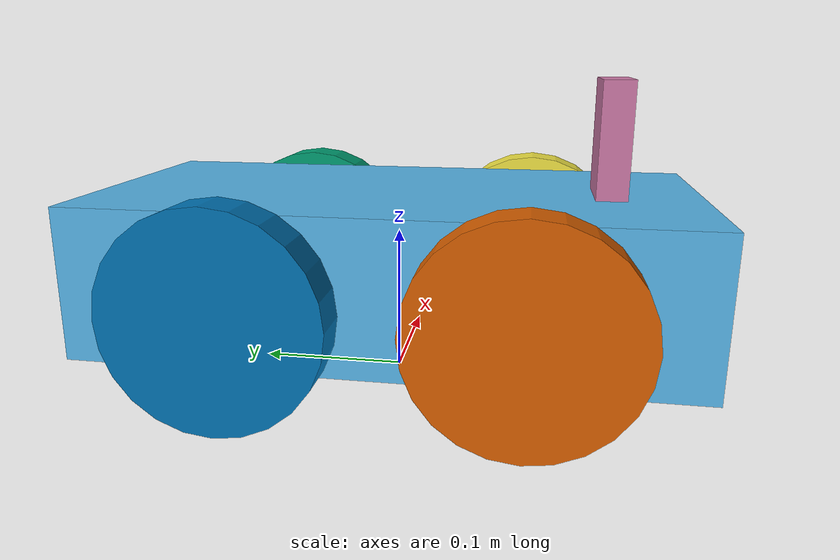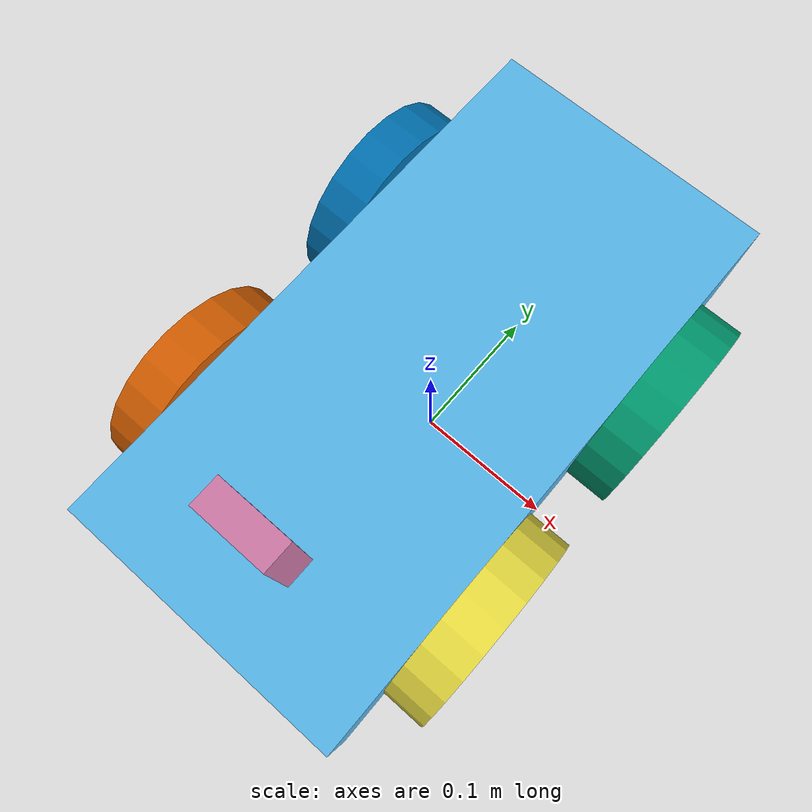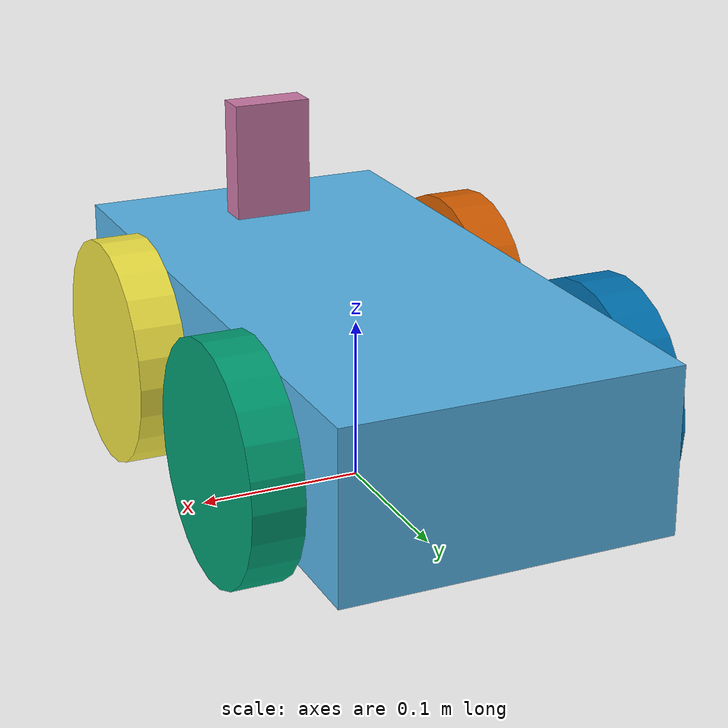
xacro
<?xml version="1.0"?>
<robot xmlns:xacro="http://www.ros.org/wiki/xacro" name="hover">

    <link name="dummy_link" />

    <joint name="dummy_joint" type="fixed">
        <parent link="dummy_link"/>
        <child link="base_link"/>
    </joint>

    <link name="base_link">
        <inertial>
            <origin xyz="0 0 0.08" rpy="0 0 0"/>
            <mass value="0.8"/>
            <inertia ixx="0.306"  ixy="0"  ixz="0" iyy="0.36" iyz="0" izz="0.54" />
        </inertial>

        <visual>
            <origin xyz="0 0 0.08" rpy="0 0 0"/>
            <geometry>
                <box size="0.2 0.4 0.1" />
            </geometry>
        </visual>

        <collision>
            <origin xyz="0 0 0.08" rpy="0 0 0"/>
            <geometry>
                <box size="0.2 0.4 0.1" />
            </geometry>
        </collision>
    </link>

    <gazebo reference="base_link">
        <visual>
            <material>
                <ambient>0.0 0.0 1.0 1.0</ambient>
                <diffuse>0.0 0.0 1.0 1.0</diffuse>
                <specular>0.1 0.1 0.1 1.0</specular>
                <emissive>0.0 0.0 0.0 1.0</emissive>
            </material>
        </visual>
    </gazebo>

    <xacro:macro name="wheel" params="prefix x_reflect y_reflect">

        <link name="${prefix}_wheel">
            <inertial>
                <mass value="0.1"/>
                <inertia ixx="0.000702"  ixy="0"  ixz="0" iyy="0.000702" iyz="0" izz="0.001323" />
            </inertial>

            <visual>
                <geometry>
                    <cylinder radius="0.07" length="0.03"/>
                </geometry>
            </visual>

            <collision>
                <geometry>
                    <cylinder radius="0.07" length="0.03"/>
                </geometry>
            </collision>
        </link>

        <gazebo reference="${prefix}_wheel">
            <visual>
                <material>
                    <ambient>1.0 1.0 1.0 1.0</ambient>
                    <diffuse>1.0 1.0 1.0 1.0</diffuse>
                    <specular>0.1 0.1 0.1 1.0</specular>
                    <emissive>0.0 0.0 0.0 1.0</emissive>
                </material>
            </visual>
            <mu1>0.4</mu1>
            <mu2>0.4</mu2>
            <kp>1000000.0</kp>
            <kd>100.0</kd>
        </gazebo>

        <joint name="joint_base_to_${prefix}_wheel" type="continuous">
            <origin xyz="${x_reflect * 0.115} ${y_reflect * 0.09} 0.07" rpy="1.57079633 1.57079633 1.57079633"/>
            <axis xyz="0 0 1"/>
            <parent link="base_link"/>
            <child link="${prefix}_wheel"/>
        </joint>

    </xacro:macro>

    <xacro:wheel prefix="right_front" x_reflect="1"  y_reflect="1" />
    <xacro:wheel prefix="right_back"  x_reflect="1"  y_reflect="-1" />
    <xacro:wheel prefix="left_front"  x_reflect="-1" y_reflect="1" />
    <xacro:wheel prefix="left_back"   x_reflect="-1" y_reflect="-1" />

    <xacro:property name="wheel_separation" value="0.23" />
    <xacro:property name="wheel_diameter" value="0.14" />

    <xacro:property name="cam_x" value="0.02" />
    <xacro:property name="cam_y" value="0.05" />
    <xacro:property name="cam_z" value="0.08" />

    <gazebo>
        <plugin name="skid_steer_drive_controller" filename="libgazebo_ros_skid_steer_drive.so">
        <updateRate>100.0</updateRate>
        <leftFrontJoint>joint_base_to_left_front_wheel</leftFrontJoint>
        <rightFrontJoint>joint_base_to_right_front_wheel</rightFrontJoint>
        <leftRearJoint>joint_base_to_left_back_wheel</leftRearJoint>
        <rightRearJoint>joint_base_to_right_back_wheel</rightRearJoint>
        <wheelSeparation>${wheel_separation}</wheelSeparation>
        <wheelDiameter>${wheel_diameter}</wheelDiameter>
        <robotBaseFrame>base_link</robotBaseFrame>
        <torque>20</torque>
        <commandTopic>cmd_vel</commandTopic>
        <odometryTopic>odom</odometryTopic>
        <odometryFrame>odom</odometryFrame>
        <covariance_x>0.000100</covariance_x>
        <covariance_y>0.000100</covariance_y>
        <covariance_yaw>0.010000</covariance_yaw>
        <broadcastTF>true</broadcastTF>
        </plugin>
    </gazebo>

    <xacro:macro name="camera_sensor" params="parent *origin">

        <link name="camera_link">
        <inertial>
            <mass value="0.1"/>
            <inertia ixx="0.000296" ixy="0.0" ixz="0.0"
                    iyy="0.000296" iyz="0.0"
                    izz="0.000167" />
        </inertial>

        <visual>
            <geometry>
            <box size="${cam_x} ${cam_y} ${cam_z}"/>
            </geometry>
        </visual>

        <collision>
            <geometry>
            <box size="${cam_x} ${cam_y} ${cam_z}"/>
            </geometry>
        </collision>
        </link>

        <joint name="joint_base_to_camera_link" type="fixed">
        <xacro:insert_block name="origin" />
        <parent link="${parent}"/>
        <child link="camera_link"/>
        </joint>

        <gazebo reference="camera_link">
            <visual>
                <material>
                    <ambient>0.0 1.0 0.0 1.0</ambient>
                    <diffuse>0.0 1.0 0.0 1.0</diffuse>
                    <specular>0.1 0.1 0.1 1.0</specular>
                    <emissive>0.0 0.0 0.0 1.0</emissive>
                </material>
            </visual>
        </gazebo>

        <gazebo reference="camera_link">
        <sensor type="depth" name="camera">
            <always_on>true</always_on>
            <visualize>true</visualize>
            <camera>
            <horizontal_fov>0.733038</horizontal_fov>
            <image>
                <width>640</width>
                <height>480</height>
                <format>R8G8B8</format>
            </image>
            <clip>
                <near>0.1</near>
                <far>100</far>
            </clip>
            </camera>

            <plugin name="camera_controller" filename="libgazebo_ros_openni_kinect.so">
                <baseline>0.2</baseline>
                <alwaysOn>true</alwaysOn>
                <updateRate>30.0</updateRate>
                <cameraName>camera</cameraName>
                <frameName>camera_link</frameName>
                <imageTopicName>rgb/image_raw</imageTopicName>
                <depthImageTopicName>depth/image_raw</depthImageTopicName>
                <pointCloudTopicName>depth/points</pointCloudTopicName>
                <cameraInfoTopicName>rgb/camera_info</cameraInfoTopicName>
                <depthImageCameraInfoTopicName>depth/camera_info</depthImageCameraInfoTopicName>
                <pointCloudCutoff>0.4</pointCloudCutoff>
                <hackBaseline>0.07</hackBaseline>

                <distortionK1>0.08572347676525761</distortionK1>
                <distortionK2>-0.016099638764187674</distortionK2>
                <distortionK3>0.0</distortionK3>
                <distortionT1>-0.00036488688145355395</distortionT1>
                <distortionT2>0.0007390441756055046</distortionT2>

                <CxPrime>323.6863650820585</CxPrime>
                <Cx>323.6863650820585</Cx>
                <Cy>225.13608657609507</Cy>
                <focalLength>833.628857</focalLength>
            </plugin>
        </sensor>
        </gazebo>

    </xacro:macro>

    <xacro:camera_sensor parent="base_link">
        <origin xyz="0.0 -0.14 0.165" rpy="0 0 4.712"/>
    </xacro:camera_sensor>

    <link name="imu_link">
        <inertial>
            <mass value="0.015"/> <origin xyz="0 0 0" rpy="0 0 0"/>
            <inertia ixx="0.000001" ixy="0" ixz="0" iyy="0.000001" iyz="0" izz="0.000001" />
        </inertial>
        <visual>
            <geometry>
                <box size="0.02 0.02 0.01"/>
            </geometry>
        </visual>
    </link>

    <joint name="imu_joint" type="fixed">
        <parent link="base_link"/>
        <child link="imu_link"/>
        <origin xyz="0 0 0.1" rpy="0 0 0"/> </joint>

    <gazebo reference="imu_link">
        <gravity>true</gravity>
        <sensor name="imu_sensor" type="imu">
        <always_on>true</always_on>
        <update_rate>250</update_rate>
        <visualize>true</visualize>
        <topic>__default_topic__</topic>

        <imu>
            <angular_velocity>
            <x>
                <noise type="gaussian">
                <mean>0.0</mean>
                <stddev>0.0003394</stddev>
                <bias_mean>0.0</bias_mean>
                <bias_stddev>0.000038785</bias_stddev>
                </noise>
            </x>
            <y>
                <noise type="gaussian">
                <mean>0.0</mean>
                <stddev>0.0003394</stddev>
                <bias_mean>0.0</bias_mean>
                <bias_stddev>0.000038785</bias_stddev>
                </noise>
            </y>
            <z>
                <noise type="gaussian">
                <mean>0.0</mean>
                <stddev>0.0003394</stddev>
                <bias_mean>0.0</bias_mean>
                <bias_stddev>0.000038785</bias_stddev>
                </noise>
            </z>
            </angular_velocity>
            <linear_acceleration>
            <x>
                <noise type="gaussian">
                <mean>0.0</mean>
                <stddev>0.004</stddev>
                <bias_mean>0.0</bias_mean>
                <bias_stddev>0.006</bias_stddev>
                </noise>
            </x>
            <y>
                <noise type="gaussian">
                <mean>0.0</mean>
                <stddev>0.004</stddev>
                <bias_mean>0.0</bias_mean>
                <bias_stddev>0.006</bias_stddev>
                </noise>
            </y>
            <z>
                <noise type="gaussian">
                <mean>0.0</mean>
                <stddev>0.004</stddev>
                <bias_mean>0.0</bias_mean>
                <bias_stddev>0.006</bias_stddev>
                </noise>
            </z>
            </linear_acceleration>
        </imu>

        <plugin name="imu_plugin" filename="libgazebo_ros_imu_sensor.so">
            <topicName>imu/data</topicName>
            <bodyName>imu_link</bodyName>
            <updateRateHZ>250.0</updateRateHZ>
            <gaussianNoise>0.0</gaussianNoise> <xyzOffset>0 0 0</xyzOffset>
            <rpyOffset>0 0 0</rpyOffset>
            <frameName>imu_link</frameName>
            <initialOrientationAsReference>false</initialOrientationAsReference>
        </plugin>
        </sensor>
    </gazebo>

</robot>
